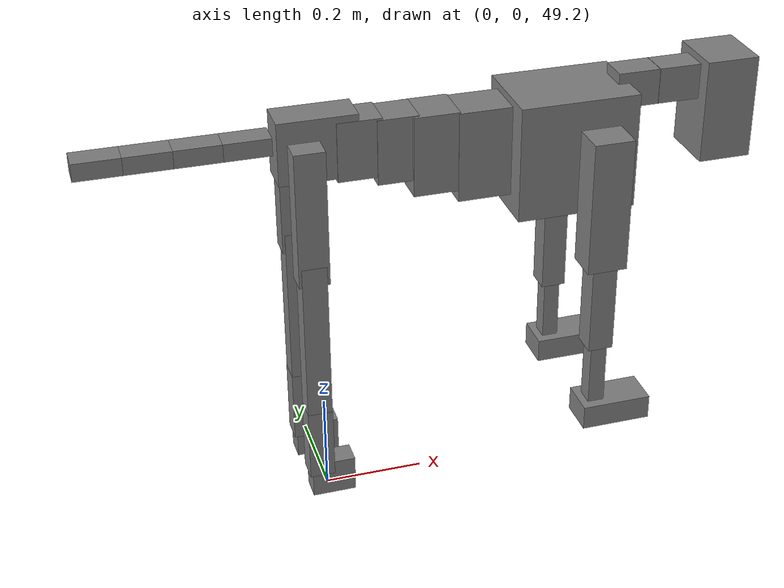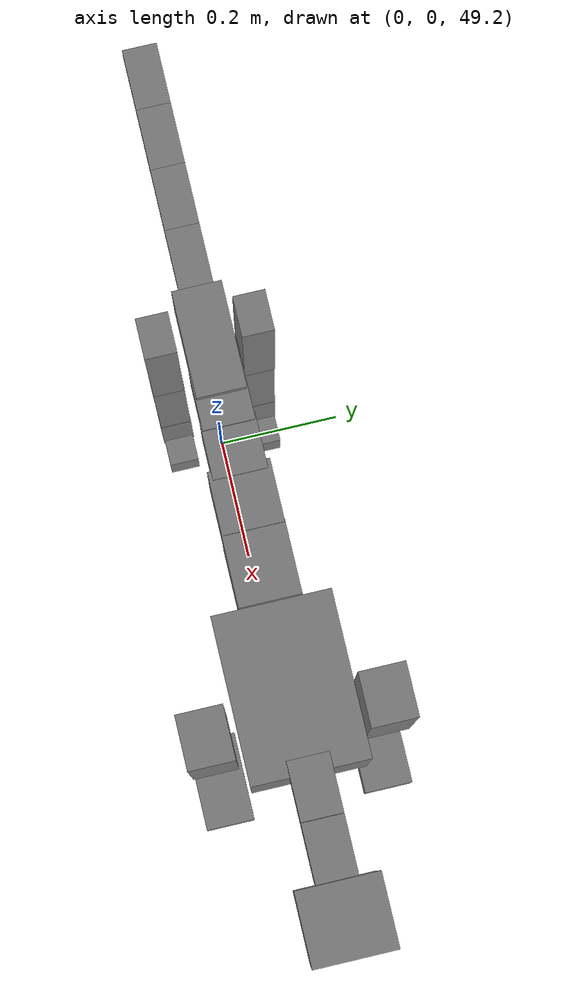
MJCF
<mujoco model="dog">

    <default>
        <joint armature="0.02" stiffness="1" damping="0.2" limited="true"/>
        <geom condim="3" friction="1 0.05 0.05" margin="0.01"/>
        <motor ctrllimited="true" ctrlrange="-1.0 1.0" forcelimited="true" gear="50"/>
    </default>

    <compiler inertiafromgeom="true" angle="radian"/>

    <option timestep="0.016" iterations="50" tolerance="1e-10" solver="Newton" jacobian="dense" cone="pyramidal"/>

    <size nconmax="20000" njmax="60000" nstack="5000000"/>
    <visual>
        <map force="0.1" zfar="30"/>
        <rgba haze="0.15 0.25 0.35 1"/>
        <quality shadowsize="2048"/>
        <global offwidth="800" offheight="800"/>
    </visual>

    <asset>
        <texture type="skybox" builtin="gradient" rgb1="0.3 0.5 0.7" rgb2="0 0 0" width="512" height="512"/>
        <texture name="texplane" type="2d" builtin="checker" rgb1=".2 .3 .4" rgb2=".1 0.15 0.2" width="512" height="512"
                 mark="cross" markrgb=".8 .8 .8"/>
        <texture name="texgeom" type="cube" builtin="flat" mark="cross" width="127" height="1278" rgb1="0.8 0.6 0.4"
                 rgb2="0.8 0.6 0.4" markrgb="1 1 1" random="0.01"/>

        <material name="matplane" reflectance="0.3" texture="texplane" texrepeat="1 1" texuniform="true"/>
        <material name="matgeom" texture="texgeom" texuniform="true" rgba="0.8 0.6 .4 1"/>
    </asset>

    <worldbody>
        <geom name="floor" pos="0 0 0" size="0 0 .25" type="plane" material="matplane" condim="3"/>

        <light directional="false" diffuse=".2 .2 .2" specular="0 0 0" pos="0 0 5" dir="0 0 -1" castshadow="false"/>
        <light mode="targetbodycom" target="torso" directional="false" diffuse=".8 .8 .8" specular="0.3 0.3 0.3"
               pos="0 0 4.0" dir="0 0 -1"/>

        <body name="root" pos="0 0 50">
            <freejoint name="root_1"/>
            <geom type="box" pos="0 0 -0.02" size="0.0774  0.0358  0.063" density="2030"/>

            <body name="spine1" pos="0.054 0 0">
                <joint name="spine1_y" axis="0 1 0" range="0 0.7" limited="true"/>
                <geom type="box" pos="0.02375 0 -0.03" size="0.04375  0.0375  0.05985" density="2030"/>

                <body name="spine2" pos="0.0612 0 0">
                    <joint name="spine2_y" axis="0 1 0" range="-0.15 0.15" limited="true"/>
                    <geom type="box" pos="0.03555  0  -0.04" size="0.04055  0.039  0.06615" density="2030"/>

                    <body name="spine3" pos="0.0730 0 0">
                        <joint name="spine3_y" axis="0 1 0" range="-0.15 0.15" limited="true"/>
                        <geom type="box" pos="0.03555  0  -0.057" size="0.04555  0.0445  0.081" density="2030"/>

                        <body name="spine4" pos="0.0780 0 0">
                            <joint name="spine4_y" axis="0 1 0" range="-0.15 0.15" limited="true"/>
                            <geom type="box" pos="0.05265  0  -0.07" size="0.05265  0.045  0.09135" density="2030"/>

                            <body name="torso" pos="0.1082 0 0">
                                <joint name="torso_y" axis="0 1 0" range="-0.15 0.15" limited="true"/>
                                <geom type="box" pos="0.11925  0  -0.085" size="0.11925  0.085  0.11745"
                                      density="2030"/>

                                <body name="neck1" pos="0.2160  0   0.0180">
                                    <joint name="neck1_y" axis="0 1 0" range="-1.2  -1" limited="true"/>
                                    <geom type="box" pos="0.0423  0  0" size="0.0423  0.03  0.036" density="2325"/>

                                    <body name="neck2" pos="0.0853  0  0">
                                        <joint name="neck2_y" axis="0 1 0" range="0.1  0" limited="true"/>
                                        <geom type="box" pos="0.0423  0  0" size="0.0423  0.03  0.036" density="2325"/>

                                        <body name="head" pos="0.0853  0  0">
                                            <joint name="head_y" axis="0 1 0" range="-0.3  -0.2" limited="true"/>
                                            <geom type="box" pos="0.0531  0  -0.055" size="0.0531  0.06  0.1044"
                                                  density="4030"/>

                                        </body>
                                    </body>
                                </body>

                                <body name="front_shoulder" pos="0.156  0   -0.0480">
                                    <joint name="front_shoulder_y" axis="0 1 0" range="-1 1.5" limited="true"/>
                                    <geom type="box" pos="0 0.13 -0.1101" size="0.0401  0.0343  0.1367" density="1158"/>
                                    <geom type="box" pos="0 -0.13 -0.1101" size="0.0401  0.0343  0.1367"
                                          density="1158"/>

                                    <body name="front_elbow" pos="0  0  -0.2201">
                                        <joint name="front_elbow_y" axis="0 1 0" range="-2 0" limited="true"/>
                                        <geom type="box" pos="0 0.13 -0.1048" size="0.0253  0.0258  0.1048"
                                              density="1081"/>
                                        <geom type="box" pos="0 -0.13 -0.1048" size="0.0253  0.0258  0.1048"
                                              density="1081"/>

                                        <body name="front_wrist" pos="0  0  -0.2097">
                                            <joint name="front_wrist_y" axis="0 1 0" range="-0.2 0" limited="true"/>
                                            <geom type="box" pos="0 0.13 -0.0715" size="0.0168  0.0187  0.0846"
                                                  density="1664"/>
                                            <geom type="box" pos="0 -0.13 -0.0715" size="0.0168  0.0187  0.0846"
                                                  density="1664"/>

                                            <body name="front_finger_end" pos="0  0  -0.1430">
                                                <joint name="front_finger_y" axis="0 1 0" range="-0.4 1"
                                                       limited="true"/>
                                                <geom type="box" pos="0.0388  0.13  -0.0101"
                                                      size="0.0711  0.0388  0.0251" density="1515"/>
                                                <geom type="box" pos="0.0388  -0.13  -0.0101"
                                                      size="0.0711  0.0388  0.0251" density="1515"/>

                                            </body>

                                        </body>
                                    </body>
                                </body>

                            </body>
                        </body>
                    </body>
                </body>
            </body>

            <body name="back_hip" pos="-0.03 0 -0.018">
                <joint name="back_hip_y" axis="0 1 0" range="-1.5 0.3" limited="true"/>
                <geom type="box" pos="0 0.07 -0.1146" size="0.0300  0.0235  0.1374" density="1154"/>
                <geom type="box" pos="0 -0.07 -0.1146" size="0.0300  0.0235  0.1374" density="1154"/>

                <body name="back_knee" pos="0  0  -0.2292">
                    <joint name="back_knee_y" axis="0 1 0" range="0 2.8" limited="true"/>
                    <geom type="box" pos="0 0.07 -0.1614" size="0.0246  0.0242  0.1770" density="1227"/>
                    <geom type="box" pos="0 -0.07 -0.1614" size="0.0246  0.0242  0.1770" density="1227"/>

                    <body name="back_ankle" pos="0  0  -0.3228">
                        <joint name="back_ankle_y" axis="0 1 0" range="-2.2 0" limited="true"/>
                        <geom type="box" pos="0 0.07 -0.0636" size="0.0250  0.0250  0.0749" density="1284"/>
                        <geom type="box" pos="0 -0.07 -0.0636" size="0.0250  0.0250  0.0749" density="1284"/>

                        <body name="back_toe_end" pos="0  0  -0.1273">
                            <joint name="back_toe_y" axis="0 1 0" range="-0.4 1" limited="true"/>
                            <geom type="box" pos="0.0237  0.07  -0.0221" size="0.0435  0.0237  0.0371" density="1515"/>
                            <geom type="box" pos="0.0237  -0.07  -0.0221" size="0.0435  0.0237  0.0371" density="1515"/>

                        </body>
                    </body>
                </body>
            </body>

            <body name="tail1" pos="-0.074 0 -0.006">
                <joint name="tail1_y" axis="0 1 0" range="-0.2 0.2" limited="true"/>
                <geom type="box" pos="-0.0536  0  0" size="0.045  0.025  0.0175" density="1587"/>

                <body name="tail2" pos="-0.09 0 0">
                    <joint name="tail2_y" axis="0 1 0" range="-0.2 0.2" limited="true"/>
                    <geom type="box" pos="-0.0536  0  0" size="0.045  0.025  0.0175" density="1587"/>

                    <body name="tail3" pos="-0.09 0 0">
                        <joint name="tail3_y" axis="0 1 0" range="-0.2 0.2" limited="true"/>
                        <geom type="box" pos="-0.0536  0  0" size="0.045  0.025  0.0175" density="1587"/>

                        <body name="tail4" pos="-0.09 0 0">
                            <joint name="tail4_y" axis="0 1 0" range="-0.2 0.2" limited="true"/>
                            <geom type="box" pos="-0.0536  0  0" size="0.045  0.025  0.0175" density="1587"/>

                        </body>
                    </body>
                </body>
            </body>
        </body>
    </worldbody>

    <actuator>
        <motor joint="spine1_y" forcerange="-150 150     "/>
        <motor joint="spine2_y" forcerange="-150 150     "/>
        <motor joint="spine3_y" forcerange="-150 150     "/>
        <motor joint="spine4_y" forcerange="-150 150     "/>
        <motor joint="torso_y" forcerange="-150 150     "/>
        <motor joint="neck1_y" forcerange="-100 100       "/>
        <motor joint="neck2_y" forcerange="-100 100       "/>
        <motor joint="head_y" forcerange="-150 150       "/>
        <motor joint="front_shoulder_y" forcerange="-147.60 180.91"/>
        <motor joint="front_elbow_y" forcerange="-139.01 148.74"/>
        <motor joint="front_wrist_y" forcerange="-71.20 78.38"/>
        <motor joint="front_finger_y" forcerange="-96.70 70.11"/>
        <motor joint="back_hip_y" forcerange="-219.69 293.86"/>
        <motor joint="back_knee_y" forcerange="-320.99 231.71"/>
        <motor joint="back_angle_y" forcerange="-146.14 153.40"/>
        <motor joint="back_toe_y" forcerange="-22.54 87.21"/>
        <motor joint="tail1_y" forcerange="-50 50     "/>
        <motor joint="tail2_y" forcerange="-50 50     "/>
        <motor joint="tail3_y" forcerange="-50 50     "/>
        <motor joint="tail4_y" forcerange="-50 50     "/>
    </actuator>
</mujoco>
